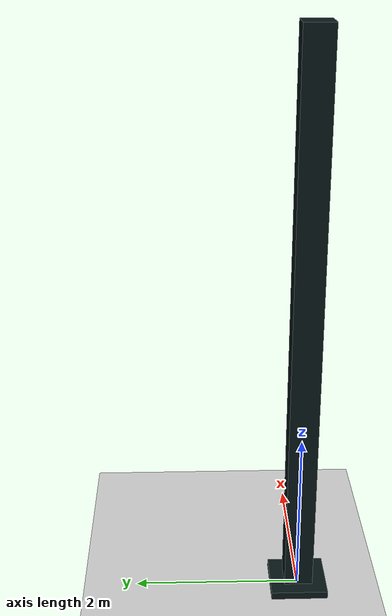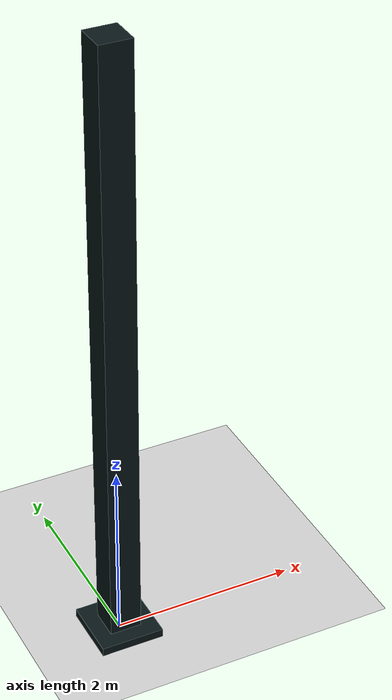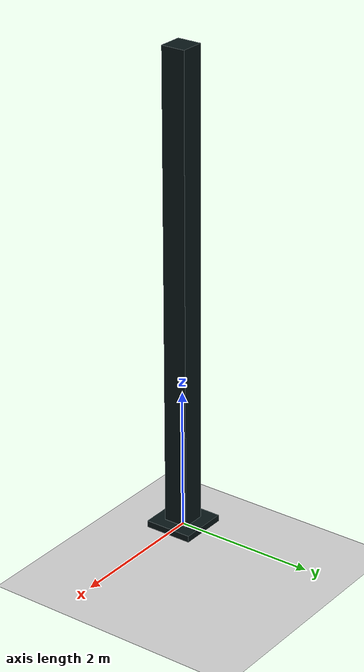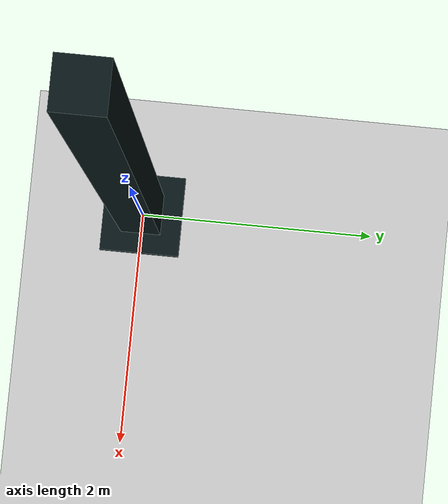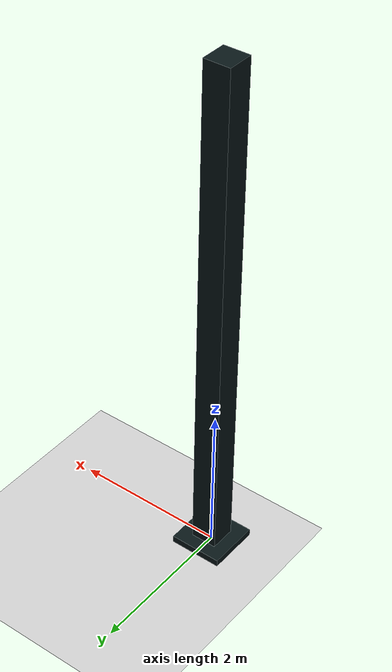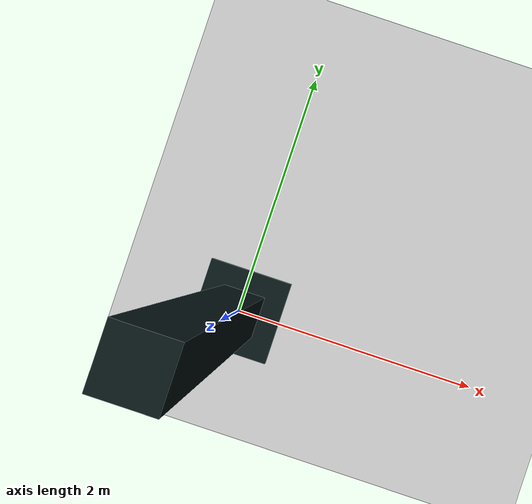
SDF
<?xml version="1.0"?>
<sdf version="1.4">
  <world name="default">
    <include>
      <uri>model://ground_plane</uri>
    </include>
    <include>
      <uri>model://sun</uri>
    </include>
    <include>
      <uri>model://pylon</uri>
    </include>
  </world>
</sdf>

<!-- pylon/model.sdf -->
<sdf version="1.5">
  <model name="pylon">
    <static>true</static>
    <link name="link">
      <collision name="collision">
        <pose>0 0 0 0 0 0</pose>
        <laser_retro>255</laser_retro>
        <geometry>
          <mesh>
            <uri>model://pylon/meshes/pylon.dae</uri>
          </mesh>
        </geometry>
        <surface>
          <friction>
            <ode>
              <mu>100</mu>
              <mu2>50</mu2>
            </ode>
          </friction>
        </surface>
      </collision>
      <visual name="visual">
        <pose>0 0 0 0 0 0</pose>
        <geometry>
          <mesh>
            <uri>model://pylon/meshes/pylon.dae</uri>
          </mesh>
        </geometry>
      </visual>
    </link>
  </model>
</sdf>
